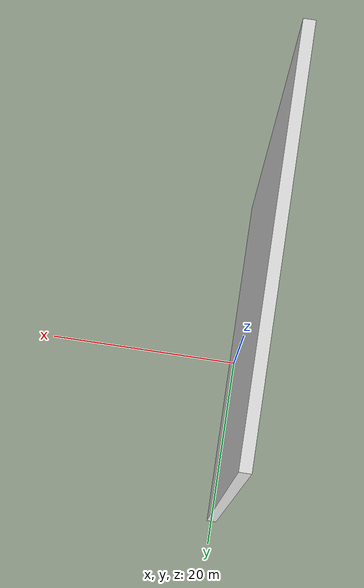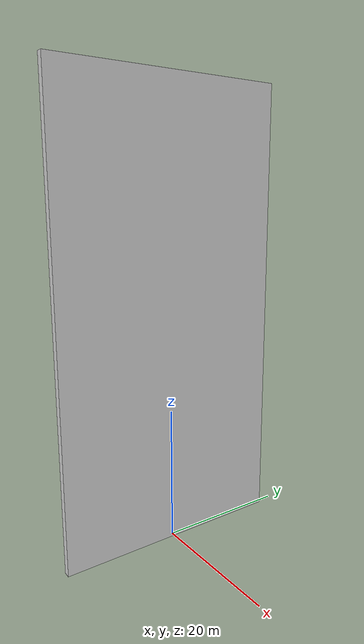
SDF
<?xml version='1.0'?>
<sdf version='1.6'>
  <model name='Schonherz'>
    <link name='link_1'>
      <inertial>
        <mass>3851.15</mass>
        <inertia>
          <ixx>1.91969e+06</ixx>
          <ixy>0</ixy>
          <ixz>0</ixz>
          <iyy>2.7152e+06</iyy>
          <iyz>0</iyz>
          <izz>800000</izz>
        </inertia>
        <pose frame=''>0 0 0 0 -0 0</pose>
      </inertial>
      <pose frame=''>0 0 33.5 0 0 0</pose>
      <visual name='visual'>
        <pose frame=''>0 0 0 0 -0 0</pose>
        <geometry>
          <box>
            <size>1 35 67</size>
          </box>
        </geometry>
        <material>
          <lighting>1</lighting>
          <script>
            <uri>file://media/materials/scripts/gazebo.material</uri>
            <name>Gazebo/White</name>
          </script>
          <shader type='pixel'/>
        </material>
        <transparency>0</transparency>
        <cast_shadows>1</cast_shadows>
      </visual>
      <collision name='collision'>
        <laser_retro>0</laser_retro>
        <max_contacts>10</max_contacts>
        <pose frame=''>0 0 0 0 -0 0</pose>
        <geometry>
          <box>
            <size>1 35 67</size>
          </box>
        </geometry>
        <surface>
          <friction>
            <ode>
              <mu>1</mu>
              <mu2>1</mu2>
              <fdir1>0 0 0</fdir1>
              <slip1>0</slip1>
              <slip2>0</slip2>
            </ode>
            <torsional>
              <coefficient>1</coefficient>
              <patch_radius>0</patch_radius>
              <surface_radius>0</surface_radius>
              <use_patch_radius>1</use_patch_radius>
              <ode>
                <slip>0</slip>
              </ode>
            </torsional>
          </friction>
          <bounce>
            <restitution_coefficient>0</restitution_coefficient>
            <threshold>1e+06</threshold>
          </bounce>
          <contact>
            <collide_without_contact>0</collide_without_contact>
            <collide_without_contact_bitmask>1</collide_without_contact_bitmask>
            <collide_bitmask>1</collide_bitmask>
            <ode>
              <soft_cfm>0</soft_cfm>
              <soft_erp>0.2</soft_erp>
              <kp>1e+13</kp>
              <kd>1</kd>
              <max_vel>0.01</max_vel>
              <min_depth>0</min_depth>
            </ode>
            <bullet>
              <split_impulse>1</split_impulse>
              <split_impulse_penetration_threshold>-0.01</split_impulse_penetration_threshold>
              <soft_cfm>0</soft_cfm>
              <soft_erp>0.2</soft_erp>
              <kp>1e+13</kp>
              <kd>1</kd>
            </bullet>
          </contact>
        </surface>
      </collision>
    </link>
    <static>0</static>
    <allow_auto_disable>1</allow_auto_disable>
  </model>
</sdf>
